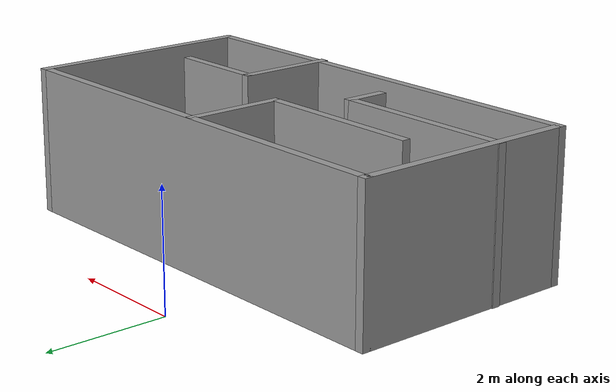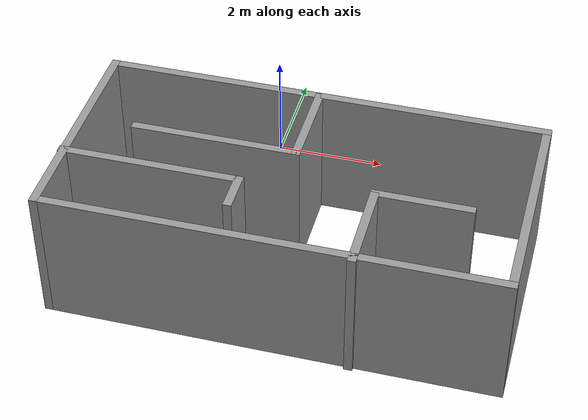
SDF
<?xml version='1.0'?>
<sdf version='1.7'>
  <model name='room'>
    <pose>1.19582 -2.66545 0 0 -0 0</pose>
    <link name='Wall_0'>
      <collision name='Wall_0_Collision'>
        <geometry>
          <box>
            <size>8 0.15 2.5</size>
          </box>
        </geometry>
        <pose>0 0 1.25 0 -0 0</pose>
      </collision>
      <visual name='Wall_0_Visual'>
        <pose>0 0 1.25 0 -0 0</pose>
        <geometry>
          <box>
            <size>8 0.15 2.5</size>
          </box>
        </geometry>
        <material>
          <script>
            <uri>file://media/materials/scripts/gazebo.material</uri>
            <name>Gazebo/Grey</name>
          </script>
          <ambient>1 1 1 1</ambient>
        </material>
        <meta>
          <layer>0</layer>
        </meta>
      </visual>
      <pose>0.009175 1.31545 0 0 -0 0</pose>
    </link>
    <link name='Wall_1'>
      <collision name='Wall_1_Collision'>
        <geometry>
          <box>
            <size>4 0.15 2.5</size>
          </box>
        </geometry>
        <pose>0 0 1.25 0 -0 0</pose>
      </collision>
      <visual name='Wall_1_Visual'>
        <pose>0 0 1.25 0 -0 0</pose>
        <geometry>
          <box>
            <size>4 0.15 2.5</size>
          </box>
        </geometry>
        <material>
          <script>
            <uri>file://media/materials/scripts/gazebo.material</uri>
            <name>Gazebo/Grey</name>
          </script>
          <ambient>1 1 1 1</ambient>
        </material>
        <meta>
          <layer>0</layer>
        </meta>
      </visual>
      <pose>3.93418 -0.609546 0 0 -0 -1.5708</pose>
    </link>
    <link name='Wall_11'>
      <collision name='Wall_11_Collision'>
        <geometry>
          <box>
            <size>1.75 0.15 2.5</size>
          </box>
        </geometry>
        <pose>0 0 1.25 0 -0 0</pose>
      </collision>
      <visual name='Wall_11_Visual'>
        <pose>0 0 1.25 0 -0 0</pose>
        <geometry>
          <box>
            <size>1.75 0.15 2.5</size>
          </box>
        </geometry>
        <material>
          <script>
            <uri>file://media/materials/scripts/gazebo.material</uri>
            <name>Gazebo/Grey</name>
          </script>
          <ambient>1 1 1 1</ambient>
        </material>
        <meta>
          <layer>0</layer>
        </meta>
      </visual>
      <pose>1.41932 -1.79045 0 0 -0 1.5708</pose>
    </link>
    <link name='Wall_12'>
      <collision name='Wall_12_Collision'>
        <geometry>
          <box>
            <size>1.75 0.15 2.5</size>
          </box>
        </geometry>
        <pose>0 0 1.25 0 -0 0</pose>
      </collision>
      <visual name='Wall_12_Visual'>
        <pose>0 0 1.25 0 -0 0</pose>
        <geometry>
          <box>
            <size>1.75 0.15 2.5</size>
          </box>
        </geometry>
        <material>
          <script>
            <uri>file://media/materials/scripts/gazebo.material</uri>
            <name>Gazebo/Grey</name>
          </script>
          <ambient>1 1 1 1</ambient>
        </material>
        <meta>
          <layer>0</layer>
        </meta>
      </visual>
      <pose>2.21932 -0.990455 0 0 -0 0</pose>
    </link>
    <link name='Wall_2'>
      <collision name='Wall_2_Collision'>
        <geometry>
          <box>
            <size>8 0.15 2.5</size>
          </box>
        </geometry>
        <pose>0 0 1.25 0 -0 0</pose>
      </collision>
      <visual name='Wall_2_Visual'>
        <pose>0 0 1.25 0 -0 0</pose>
        <geometry>
          <box>
            <size>8 0.15 2.5</size>
          </box>
        </geometry>
        <material>
          <script>
            <uri>file://media/materials/scripts/gazebo.material</uri>
            <name>Gazebo/Grey</name>
          </script>
          <ambient>1 1 1 1</ambient>
        </material>
        <meta>
          <layer>0</layer>
        </meta>
      </visual>
      <pose>0.009175 -2.53455 0 0 -0 3.14159</pose>
    </link>
    <link name='Wall_3'>
      <collision name='Wall_3_Collision'>
        <geometry>
          <box>
            <size>4 0.15 2.5</size>
          </box>
        </geometry>
        <pose>0 0 1.25 0 -0 0</pose>
      </collision>
      <visual name='Wall_3_Visual'>
        <pose>0 0 1.25 0 -0 0</pose>
        <geometry>
          <box>
            <size>4 0.15 2.5</size>
          </box>
        </geometry>
        <material>
          <script>
            <uri>file://media/materials/scripts/gazebo.material</uri>
            <name>Gazebo/Grey</name>
          </script>
          <ambient>1 1 1 1</ambient>
        </material>
        <meta>
          <layer>0</layer>
        </meta>
      </visual>
      <pose>-3.91582 -0.609546 0 0 -0 1.5708</pose>
    </link>
    <link name='Wall_5'>
      <collision name='Wall_5_Collision'>
        <geometry>
          <box>
            <size>1.75 0.15 2.5</size>
          </box>
        </geometry>
        <pose>0 0 1.25 0 -0 0</pose>
      </collision>
      <visual name='Wall_5_Visual'>
        <pose>0 0 1.25 0 -0 0</pose>
        <geometry>
          <box>
            <size>1.75 0.15 2.5</size>
          </box>
        </geometry>
        <material>
          <script>
            <uri>file://media/materials/scripts/gazebo.material</uri>
            <name>Gazebo/Grey</name>
          </script>
          <ambient>1 1 1 1</ambient>
        </material>
        <meta>
          <layer>0</layer>
        </meta>
      </visual>
      <pose>-0.092966 0.496124 0 0 -0 -1.5708</pose>
    </link>
    <link name='Wall_6'>
      <collision name='Wall_6_Collision'>
        <geometry>
          <box>
            <size>3 0.15 2.5</size>
          </box>
        </geometry>
        <pose>0 0 1.25 0 -0 0</pose>
      </collision>
      <visual name='Wall_6_Visual'>
        <pose>0 0 1.25 0 -0 0</pose>
        <geometry>
          <box>
            <size>3 0.15 2.5</size>
          </box>
        </geometry>
        <material>
          <script>
            <uri>file://media/materials/scripts/gazebo.material</uri>
            <name>Gazebo/Grey</name>
          </script>
          <ambient>1 1 1 1</ambient>
        </material>
        <meta>
          <layer>0</layer>
        </meta>
      </visual>
      <pose>-1.51797 -0.303876 0 0 -0 3.14159</pose>
    </link>
    <link name='Wall_8'>
      <collision name='Wall_8_Collision'>
        <geometry>
          <box>
            <size>3.25 0.15 2.5</size>
          </box>
        </geometry>
        <pose>0 0 1.25 0 -0 0</pose>
      </collision>
      <visual name='Wall_8_Visual'>
        <pose>0 0 1.25 0 -0 0</pose>
        <geometry>
          <box>
            <size>3.25 0.15 2.5</size>
          </box>
        </geometry>
        <material>
          <script>
            <uri>file://media/materials/scripts/gazebo.material</uri>
            <name>Gazebo/Grey</name>
          </script>
          <ambient>1 1 1 1</ambient>
        </material>
        <meta>
          <layer>0</layer>
        </meta>
      </visual>
      <pose>-2.38418 -1.2294 0 0 -0 0</pose>
    </link>
    <link name='Wall_9'>
      <collision name='Wall_9_Collision'>
        <geometry>
          <box>
            <size>0.75 0.15 2.5</size>
          </box>
        </geometry>
        <pose>0 0 1.25 0 -0 0</pose>
      </collision>
      <visual name='Wall_9_Visual'>
        <pose>0 0 1.25 0 -0 0</pose>
        <geometry>
          <box>
            <size>0.75 0.15 2.5</size>
          </box>
        </geometry>
        <material>
          <script>
            <uri>file://media/materials/scripts/gazebo.material</uri>
            <name>Gazebo/Grey</name>
          </script>
          <ambient>1 1 1 1</ambient>
        </material>
        <meta>
          <layer>0</layer>
        </meta>
      </visual>
      <pose>-0.834175 -1.5294 0 0 -0 -1.5708</pose>
    </link>
    <static>1</static>
  </model>
</sdf>
